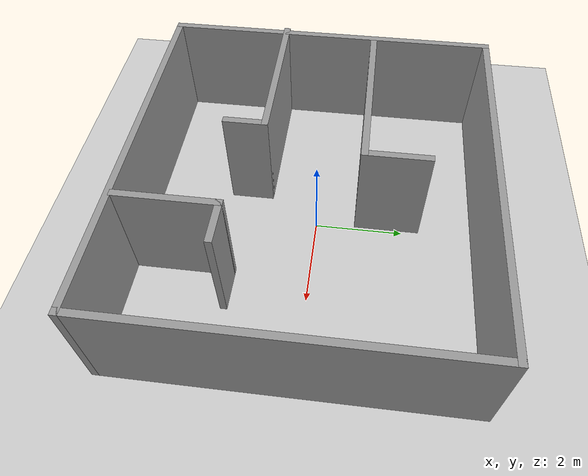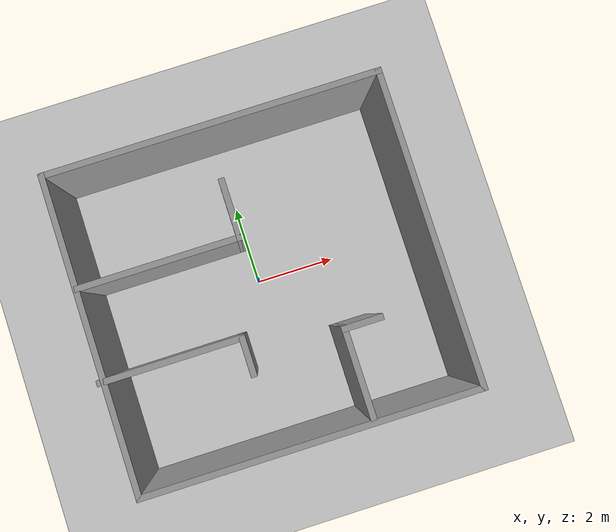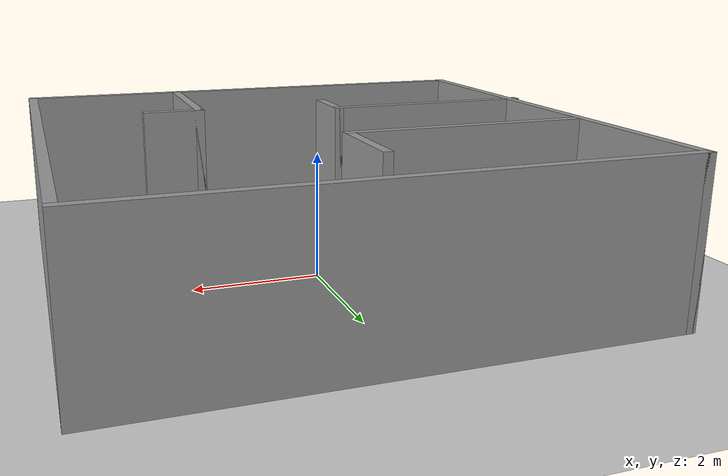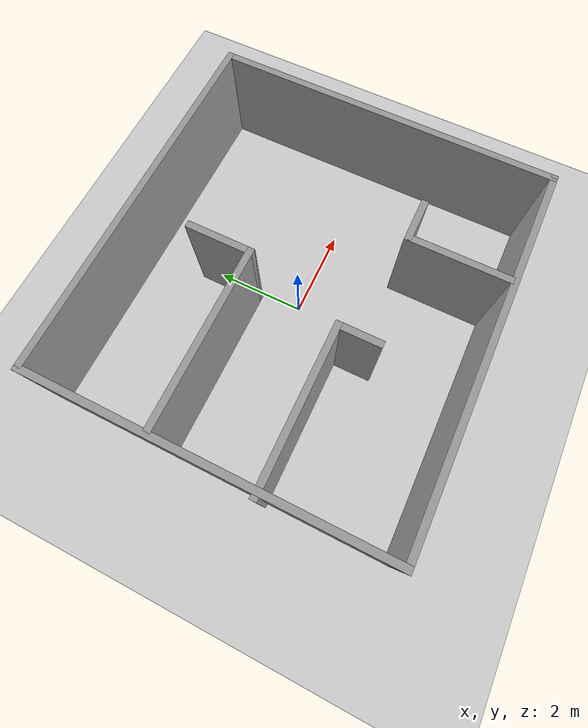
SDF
<sdf version="1.7">
 <world name="default">
  <light name="sun" type="directional">
   <pose>0 0 10 0 -0 0</pose>
   <diffuse>0.8 0.8 0.8 1</diffuse>
   <specular>0.2 0.2 0.2 1</specular>
   <attenuation>
    <range>1000</range>
    <constant>0.9</constant>
    <linear>0.01</linear>
    <quadratic>0.001</quadratic>
   </attenuation>
   <direction>-0.5 0.1 -0.9</direction>
   <spot><inner_angle>0</inner_angle><outer_angle>0</outer_angle><falloff>0</falloff></spot>
  </light>
  <model name="ground_plane">
   <static>1</static>
   <link name="link">
    <collision name="collision">
     <geometry><plane><normal>0 0 1</normal><size>100 100</size></plane></geometry>
     <surface><friction><ode><mu>100</mu><mu2>50</mu2></ode></friction></surface>
    </collision>
    <visual name="visual">
     <cast_shadows>0</cast_shadows>
     <geometry><plane><normal>0 0 1</normal><size>100 100</size></plane></geometry>
     <material>
      <script><uri>file://media/materials/scripts/gazebo.material</uri><name>Gazebo/Grey</name></script>
     </material>
    </visual>
   </link>
  </model>
  <gravity>0 0 -9.8</gravity>
  <magnetic_field>6e-06 2.3e-05 -4.2e-05</magnetic_field>
  <atmosphere type="adiabatic"/>
  <physics type="ode">
   <max_step_size>0.001</max_step_size>
   <real_time_factor>1</real_time_factor>
   <real_time_update_rate>1000</real_time_update_rate>
  </physics>
  <scene><ambient>0.4 0.4 0.4 1</ambient><background>0.7 0.7 0.7 1</background><shadows>1</shadows></scene>
  <audio><device>default</device></audio>
  <spherical_coordinates>
   <surface_model>EARTH_WGS84</surface_model>
   <latitude_deg>0</latitude_deg>
   <longitude_deg>0</longitude_deg>
   <elevation>0</elevation>
   <heading_deg>0</heading_deg>
  </spherical_coordinates>
  <model name="room">
   <pose>-0.036255 -0.12374 0 0 -0 0</pose>
   <link name="Wall_0">
    <collision name="Wall_0_Collision">
     <geometry><box><size>7.75 0.15 2.5</size></box></geometry>
     <pose>0 0 1.25 0 -0 0</pose>
    </collision>
    <visual name="Wall_0_Visual">
     <pose>0 0 1.25 0 -0 0</pose>
     <geometry><box><size>7.75 0.15 2.5</size></box></geometry>
     <material>
      <script><uri>file://media/materials/scripts/gazebo.material</uri><name>Gazebo/Grey</name></script>
      <ambient>1 1 1 1</ambient>
     </material>
     <meta><layer>0</layer></meta>
    </visual>
    <pose>-4.00501 0 0 0 -0 1.5708</pose>
   </link>
   <link name="Wall_10">
    <collision name="Wall_10_Collision">
     <geometry><box><size>1.5 0.15 2.5</size></box></geometry>
     <pose>0 0 1.25 0 -0 0</pose>
    </collision>
    <visual name="Wall_10_Visual">
     <pose>0 0 1.25 0 -0 0</pose>
     <geometry><box><size>1.5 0.15 2.5</size></box></geometry>
     <material>
      <script><uri>file://media/materials/scripts/gazebo.material</uri><name>Gazebo/Grey</name></script>
      <ambient>1 1 1 1</ambient>
     </material>
     <meta><layer>0</layer></meta>
    </visual>
    <pose>-0.111989 1.7657 0 0 -0 1.5708</pose>
   </link>
   <link name="Wall_14">
    <collision name="Wall_14_Collision">
     <geometry><box><size>2.25 0.15 2.5</size></box></geometry>
     <pose>0 0 1.25 0 -0 0</pose>
    </collision>
    <visual name="Wall_14_Visual">
     <pose>0 0 1.25 0 -0 0</pose>
     <geometry><box><size>2.25 0.15 2.5</size></box></geometry>
     <material>
      <script><uri>file://media/materials/scripts/gazebo.material</uri><name>Gazebo/Grey</name></script>
      <ambient>1 1 1 1</ambient>
     </material>
     <meta><layer>0</layer></meta>
    </visual>
    <pose>1.51765 -2.64733 0 0 -0 1.5708</pose>
   </link>
   <link name="Wall_15">
    <collision name="Wall_15_Collision">
     <geometry><box><size>1 0.15 2.5</size></box></geometry>
     <pose>0 0 1.25 0 -0 0</pose>
    </collision>
    <visual name="Wall_15_Visual">
     <pose>0 0 1.25 0 -0 0</pose>
     <geometry><box><size>1 0.15 2.5</size></box></geometry>
     <material>
      <script><uri>file://media/materials/scripts/gazebo.material</uri><name>Gazebo/Grey</name></script>
      <ambient>1 1 1 1</ambient>
     </material>
     <meta><layer>0</layer></meta>
    </visual>
    <pose>1.94265 -1.59733 0 0 -0 0</pose>
   </link>
   <link name="Wall_2">
    <collision name="Wall_2_Collision">
     <geometry><box><size>8.25 0.15 2.5</size></box></geometry>
     <pose>0 0 1.25 0 -0 0</pose>
    </collision>
    <visual name="Wall_2_Visual">
     <pose>0 0 1.25 0 -0 0</pose>
     <geometry><box><size>8.25 0.15 2.5</size></box></geometry>
     <material>
      <script><uri>file://media/materials/scripts/gazebo.material</uri><name>Gazebo/Grey</name></script>
      <ambient>1 1 1 1</ambient>
     </material>
     <meta><layer>0</layer></meta>
    </visual>
    <pose>0.04499 3.8 0 0 -0 0</pose>
   </link>
   <link name="Wall_3">
    <collision name="Wall_3_Collision">
     <geometry><box><size>7.75 0.15 2.5</size></box></geometry>
     <pose>0 0 1.25 0 -0 0</pose>
    </collision>
    <visual name="Wall_3_Visual">
     <pose>0 0 1.25 0 -0 0</pose>
     <geometry><box><size>7.75 0.15 2.5</size></box></geometry>
     <material>
      <script><uri>file://media/materials/scripts/gazebo.material</uri><name>Gazebo/Grey</name></script>
      <ambient>1 1 1 1</ambient>
     </material>
     <meta><layer>0</layer></meta>
    </visual>
    <pose>4.09499 0 0 0 -0 -1.5708</pose>
   </link>
   <link name="Wall_4">
    <collision name="Wall_4_Collision">
     <geometry><box><size>8.25 0.15 2.5</size></box></geometry>
     <pose>0 0 1.25 0 -0 0</pose>
    </collision>
    <visual name="Wall_4_Visual">
     <pose>0 0 1.25 0 -0 0</pose>
     <geometry><box><size>8.25 0.15 2.5</size></box></geometry>
     <material>
      <script><uri>file://media/materials/scripts/gazebo.material</uri><name>Gazebo/Grey</name></script>
      <ambient>1 1 1 1</ambient>
     </material>
     <meta><layer>0</layer></meta>
    </visual>
    <pose>0.04499 -3.8 0 0 -0 3.14159</pose>
   </link>
   <link name="Wall_6">
    <collision name="Wall_6_Collision">
     <geometry><box><size>3.5 0.15 2.5</size></box></geometry>
     <pose>0 0 1.25 0 -0 0</pose>
    </collision>
    <visual name="Wall_6_Visual">
     <pose>0 0 1.25 0 -0 0</pose>
     <geometry><box><size>3.5 0.15 2.5</size></box></geometry>
     <material>
      <script><uri>file://media/materials/scripts/gazebo.material</uri><name>Gazebo/Grey</name></script>
      <ambient>1 1 1 1</ambient>
     </material>
     <meta><layer>0</layer></meta>
    </visual>
    <pose>-2.41999 -1.09051 0 0 -0 0</pose>
   </link>
   <link name="Wall_7">
    <collision name="Wall_7_Collision">
     <geometry><box><size>1 0.15 2.5</size></box></geometry>
     <pose>0 0 1.25 0 -0 0</pose>
    </collision>
    <visual name="Wall_7_Visual">
     <pose>0 0 1.25 0 -0 0</pose>
     <geometry><box><size>1 0.15 2.5</size></box></geometry>
     <material>
      <script><uri>file://media/materials/scripts/gazebo.material</uri><name>Gazebo/Grey</name></script>
      <ambient>1 1 1 1</ambient>
     </material>
     <meta><layer>0</layer></meta>
    </visual>
    <pose>-0.74499 -1.51551 0 0 -0 -1.5708</pose>
   </link>
   <link name="Wall_9">
    <collision name="Wall_9_Collision">
     <geometry><box><size>4 0.15 2.5</size></box></geometry>
     <pose>0 0 1.25 0 -0 0</pose>
    </collision>
    <visual name="Wall_9_Visual">
     <pose>0 0 1.25 0 -0 0</pose>
     <geometry><box><size>4 0.15 2.5</size></box></geometry>
     <material>
      <script><uri>file://media/materials/scripts/gazebo.material</uri><name>Gazebo/Grey</name></script>
      <ambient>1 1 1 1</ambient>
     </material>
     <meta><layer>0</layer></meta>
    </visual>
    <pose>-2.03699 1.0907 0 0 -0 0</pose>
   </link>
   <static>1</static>
  </model>
 </world>
</sdf>
